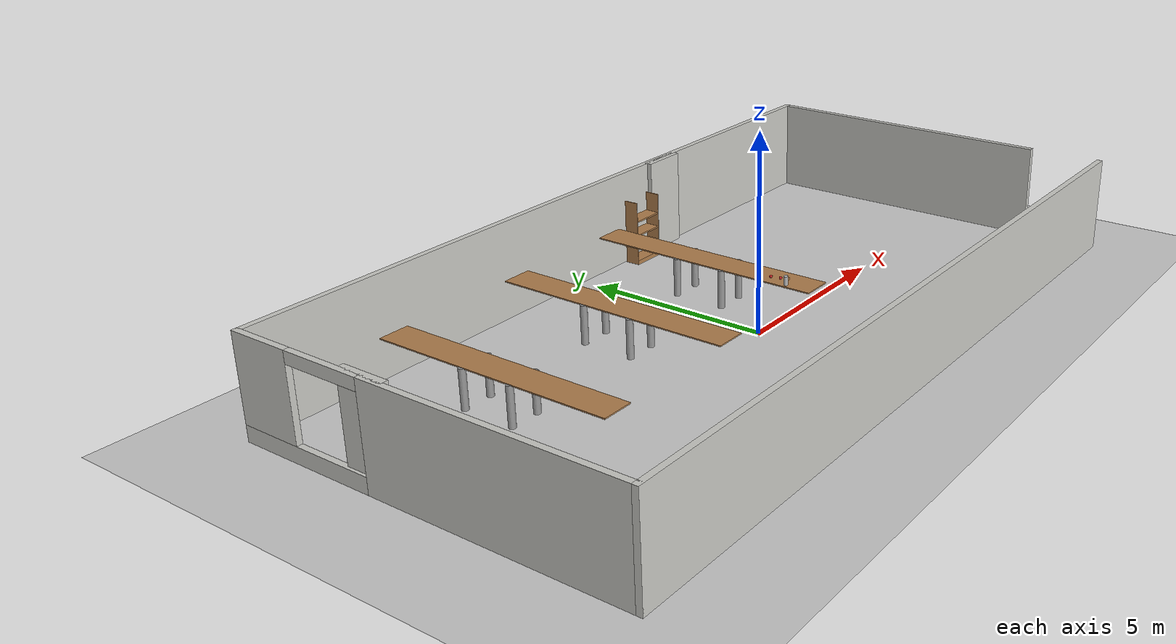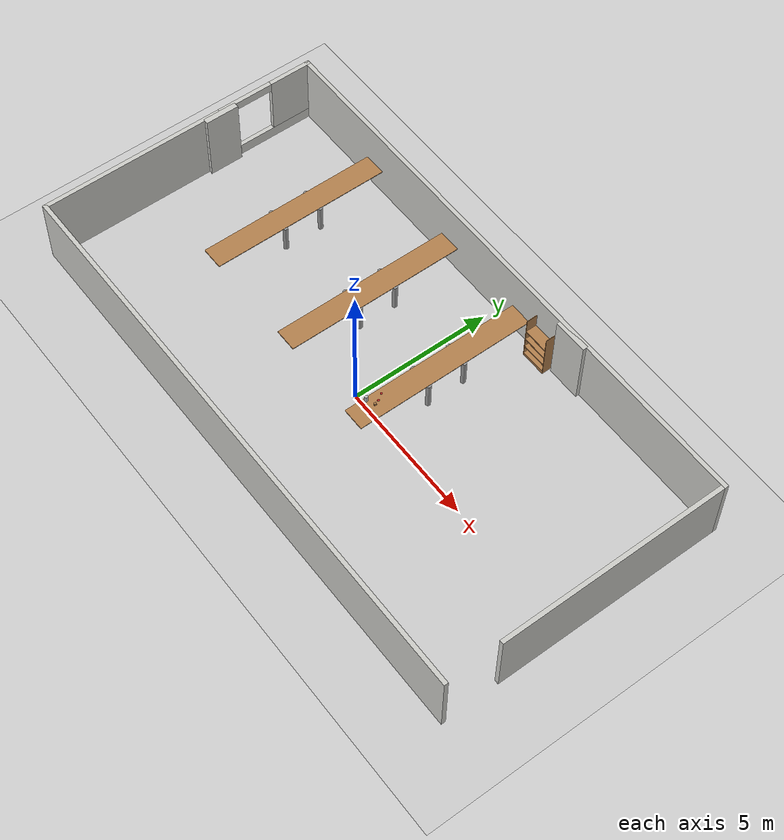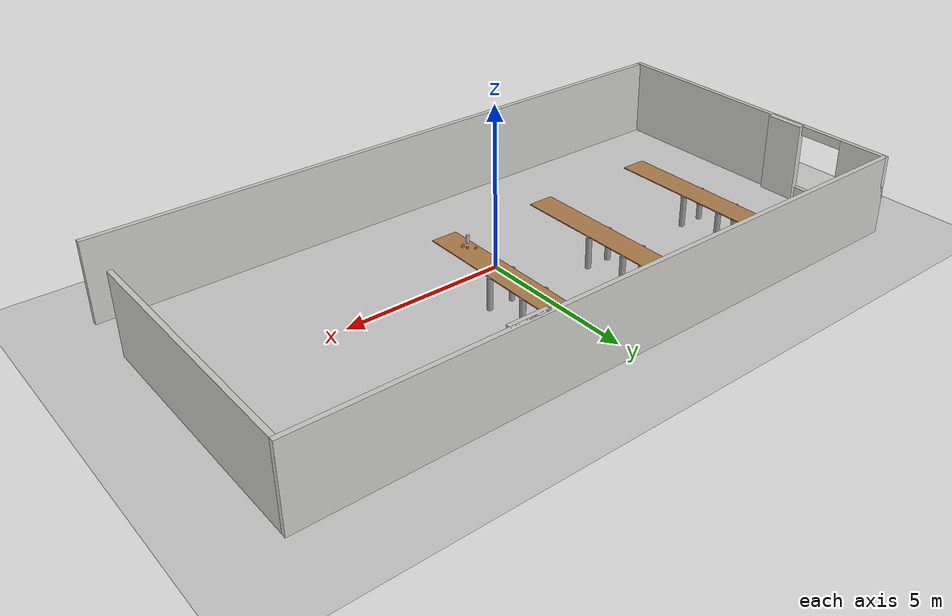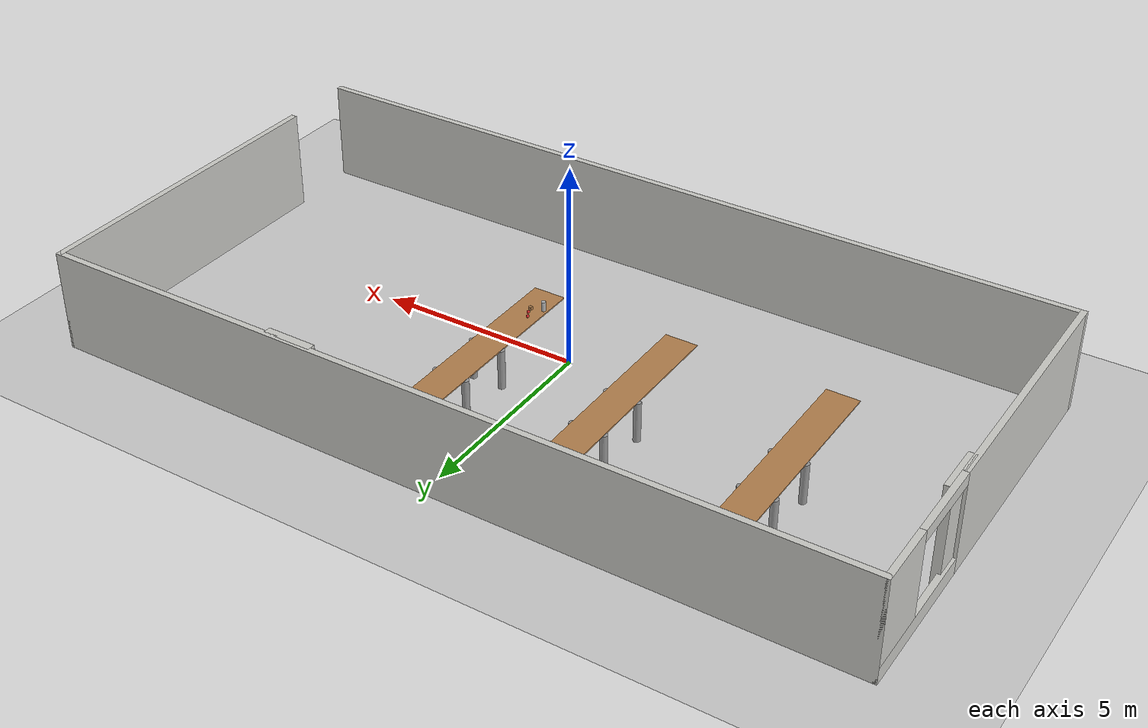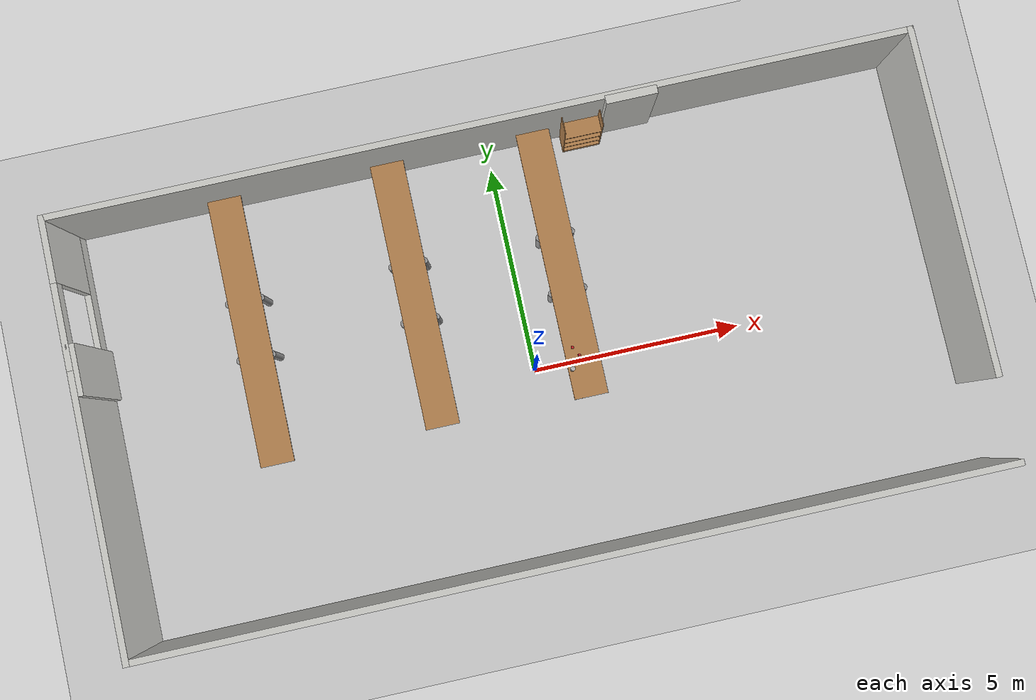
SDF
<sdf version="1.6">
 <world name="default">
  <light name="sun" type="directional">
   <pose>0 0 10 0 -0 0</pose>
   <diffuse>0.8 0.8 0.8 1</diffuse>
   <specular>0.2 0.2 0.2 1</specular>
   <attenuation>
    <range>1000</range>
    <constant>0.9</constant>
    <linear>0.01</linear>
    <quadratic>0.001</quadratic>
   </attenuation>
   <direction>-0.5 0.1 -0.9</direction>
  </light>
  <model name="ground_plane">
   <static>1</static>
   <link name="link">
    <collision name="collision">
     <geometry><plane><normal>0 0 1</normal><size>100 100</size></plane></geometry>
     <surface><friction><ode><mu>100</mu><mu2>50</mu2></ode></friction></surface>
    </collision>
    <visual name="visual">
     <cast_shadows>0</cast_shadows>
     <geometry><plane><normal>0 0 1</normal><size>100 100</size></plane></geometry>
     <material>
      <script><uri>file://media/materials/scripts/gazebo.material</uri><name>Gazebo/Grey</name></script>
     </material>
    </visual>
   </link>
  </model>
  <gravity>0 0 -9.8</gravity>
  <magnetic_field>6e-06 2.3e-05 -4.2e-05</magnetic_field>
  <atmosphere type="adiabatic"/>
  <physics name="default_physics" default="0" type="ode">
   <max_step_size>0.001</max_step_size>
   <real_time_factor>1</real_time_factor>
   <real_time_update_rate>1000</real_time_update_rate>
  </physics>
  <scene><ambient>0.4 0.4 0.4 1</ambient><background>0.7 0.7 0.7 1</background><shadows>1</shadows></scene>
  <spherical_coordinates>
   <surface_model>EARTH_WGS84</surface_model>
   <latitude_deg>0</latitude_deg>
   <longitude_deg>0</longitude_deg>
   <elevation>0</elevation>
   <heading_deg>0</heading_deg>
  </spherical_coordinates>
  <model name="office">
   <pose>-0.091369 0.56198 0 0 -0 0</pose>
   <link name="Wall_0">
    <collision name="Wall_0_Collision">
     <geometry><box><size>20.15 0.15 2.5</size></box></geometry>
     <pose>0 0 1.25 0 -0 0</pose>
    </collision>
    <visual name="Wall_0_Visual">
     <pose>0 0 1.25 0 -0 0</pose>
     <geometry><box><size>20.15 0.15 2.5</size></box></geometry>
     <material>
      <script><uri>file://media/materials/scripts/gazebo.material</uri><name>Gazebo/CeilingTiled</name></script>
      <ambient>1 1 1 1</ambient>
     </material>
     <meta><layer>0</layer></meta>
    </visual>
    <pose>0 5 0 0 -0 0</pose>
   </link>
   <link name="Wall_10">
    <collision name="Wall_10_Collision">
     <geometry><box><size>1.2 0.2 2.5</size></box></geometry>
     <pose>0 0 1.25 0 -0 0</pose>
    </collision>
    <visual name="Wall_10_Visual">
     <pose>0 0 1.25 0 -0 0</pose>
     <geometry><box><size>1.2 0.2 2.5</size></box></geometry>
     <material>
      <script><uri>file://media/materials/scripts/gazebo.material</uri><name>Gazebo/CeilingTiled</name></script>
      <ambient>1 1 1 1</ambient>
     </material>
     <meta><layer>0</layer></meta>
    </visual>
    <pose>-9.9 1.5 0 0 -0 1.5708</pose>
   </link>
   <link name="Wall_2">
    <collision name="Wall_2_Collision">
     <geometry><box><size>20.15 0.15 2.5</size></box></geometry>
     <pose>0 0 1.25 0 -0 0</pose>
    </collision>
    <visual name="Wall_2_Visual">
     <pose>0 0 1.25 0 -0 0</pose>
     <geometry><box><size>20.15 0.15 2.5</size></box></geometry>
     <material>
      <script><uri>file://media/materials/scripts/gazebo.material</uri><name>Gazebo/CeilingTiled</name></script>
      <ambient>1 1 1 1</ambient>
     </material>
     <meta><layer>0</layer></meta>
    </visual>
    <pose>0 -5 0 0 -0 0</pose>
   </link>
   <link name="Wall_4">
    <pose>-10 0 0 0 -0 1.5708</pose>
    <visual name="Wall_4_Visual_0">
     <pose>-1.7875 0 1.25 0 -0 0</pose>
     <geometry><box><size>6.575 0.15 2.5</size></box></geometry>
     <material>
      <script><uri>file://media/materials/scripts/gazebo.material</uri><name>Gazebo/CeilingTiled</name></script>
      <ambient>1 1 1 1</ambient>
     </material>
     <meta><layer>0</layer></meta>
    </visual>
    <collision name="Wall_4_Collision_0">
     <geometry><box><size>6.575 0.15 2.5</size></box></geometry>
     <pose>-1.7875 0 1.25 0 -0 0</pose>
    </collision>
    <visual name="Wall_4_Visual_1">
     <pose>3.2875 0 0.2 0 -0 0</pose>
     <geometry><box><size>3.575 0.15 0.4</size></box></geometry>
     <material>
      <script><uri>file://media/materials/scripts/gazebo.material</uri><name>Gazebo/CeilingTiled</name></script>
      <ambient>1 1 1 1</ambient>
     </material>
     <meta><layer>0</layer></meta>
    </visual>
    <collision name="Wall_4_Collision_1">
     <geometry><box><size>3.575 0.15 0.4</size></box></geometry>
     <pose>3.2875 0 0.2 0 -0 0</pose>
    </collision>
    <visual name="Wall_4_Visual_2">
     <pose>4.2875 0 1.45 0 -0 0</pose>
     <geometry><box><size>1.575 0.15 2.1</size></box></geometry>
     <material>
      <script><uri>file://media/materials/scripts/gazebo.material</uri><name>Gazebo/CeilingTiled</name></script>
      <ambient>1 1 1 1</ambient>
     </material>
     <meta><layer>0</layer></meta>
    </visual>
    <collision name="Wall_4_Collision_2">
     <geometry><box><size>1.575 0.15 2.1</size></box></geometry>
     <pose>4.2875 0 1.45 0 -0 0</pose>
    </collision>
    <visual name="Wall_4_Visual_3">
     <pose>2.5 0 2.35 0 -0 0</pose>
     <geometry><box><size>2 0.15 0.3</size></box></geometry>
     <material>
      <script><uri>file://media/materials/scripts/gazebo.material</uri><name>Gazebo/CeilingTiled</name></script>
      <ambient>1 1 1 1</ambient>
     </material>
     <meta><layer>0</layer></meta>
    </visual>
    <collision name="Wall_4_Collision_3">
     <geometry><box><size>2 0.15 0.3</size></box></geometry>
     <pose>2.5 0 2.35 0 -0 0</pose>
    </collision>
   </link>
   <link name="Wall_6">
    <collision name="Wall_6_Collision">
     <geometry><box><size>8.15 0.15 2.5</size></box></geometry>
     <pose>0 0 1.25 0 -0 0</pose>
    </collision>
    <visual name="Wall_6_Visual">
     <pose>0 0 1.25 0 -0 0</pose>
     <geometry><box><size>8.15 0.15 2.5</size></box></geometry>
     <material>
      <script><uri>file://media/materials/scripts/gazebo.material</uri><name>Gazebo/CeilingTiled</name></script>
      <ambient>1 1 1 1</ambient>
     </material>
     <meta><layer>0</layer></meta>
    </visual>
    <pose>10 1 0 0 -0 1.5708</pose>
   </link>
   <link name="Wall_8">
    <collision name="Wall_8_Collision">
     <geometry><box><size>1.2 0.2 2.5</size></box></geometry>
     <pose>0 0 1.25 0 -0 0</pose>
    </collision>
    <visual name="Wall_8_Visual">
     <pose>0 0 1.25 0 -0 0</pose>
     <geometry><box><size>1.2 0.2 2.5</size></box></geometry>
     <material>
      <script><uri>file://media/materials/scripts/gazebo.material</uri><name>Gazebo/CeilingTiled</name></script>
      <ambient>1 1 1 1</ambient>
     </material>
     <meta><layer>0</layer></meta>
    </visual>
    <pose>3.5 4.9 0 0 -0 0</pose>
   </link>
   <static>1</static>
  </model>
  <model name="table">
   <link name="link">
    <pose>6.07476 0.523898 0 0 -0 1.57</pose>
    <inertial>
     <mass>6.06198</mass>
     <inertia>
      <ixx>0.520272</ixx>
      <ixy>0</ixy>
      <ixz>0</ixz>
      <iyy>0.520272</iyy>
      <iyz>0</iyz>
      <izz>0.0302146</izz>
     </inertia>
    </inertial>
    <visual name="visual1">
     <pose>0 0 1 0 -0 0</pose>
     <geometry><box><size>6.44799 0.8 0.03</size></box></geometry>
     <material>
      <script><uri>file://media/materials/scripts/gazebo.material</uri><name>Gazebo/Wood</name></script>
      <shader type="pixel"><normal_map>__default__</normal_map></shader>
      <ambient>1 1 1 1</ambient>
      <diffuse>1 1 1 1</diffuse>
      <specular>0.2 0.2 0.2 1</specular>
      <emissive>0 0 0 1</emissive>
     </material>
    </visual>
    <visual name="front_left_leg">
     <pose>0.68 0.38 0.5 0 -0 0</pose>
     <geometry><cylinder><radius>0.0864663</radius><length>1</length></cylinder></geometry>
     <material>
      <script><uri>file://media/materials/scripts/gazebo.material</uri><name>Gazebo/Grey</name></script>
      <shader type="pixel"><normal_map>__default__</normal_map></shader>
      <ambient>0.3 0.3 0.3 1</ambient>
      <diffuse>0.7 0.7 0.7 1</diffuse>
      <specular>0.01 0.01 0.01 1</specular>
      <emissive>0 0 0 1</emissive>
     </material>
    </visual>
    <visual name="front_right_leg">
     <pose>0.68 -0.38 0.5 0 -0 0</pose>
     <geometry><cylinder><radius>0.0864663</radius><length>1</length></cylinder></geometry>
     <material>
      <script><uri>file://media/materials/scripts/gazebo.material</uri><name>Gazebo/Grey</name></script>
      <shader type="pixel"><normal_map>__default__</normal_map></shader>
      <ambient>0.3 0.3 0.3 1</ambient>
      <diffuse>0.7 0.7 0.7 1</diffuse>
      <specular>0.01 0.01 0.01 1</specular>
      <emissive>0 0 0 1</emissive>
     </material>
    </visual>
    <visual name="back_right_leg">
     <pose>-0.68 -0.38 0.5 0 -0 0</pose>
     <geometry><cylinder><radius>0.0864663</radius><length>1</length></cylinder></geometry>
     <material>
      <script><uri>file://media/materials/scripts/gazebo.material</uri><name>Gazebo/Grey</name></script>
      <shader type="pixel"><normal_map>__default__</normal_map></shader>
      <ambient>0.3 0.3 0.3 1</ambient>
      <diffuse>0.7 0.7 0.7 1</diffuse>
      <specular>0.01 0.01 0.01 1</specular>
      <emissive>0 0 0 1</emissive>
     </material>
    </visual>
    <visual name="back_left_leg">
     <pose>-0.68 0.38 0.5 0 -0 0</pose>
     <geometry><cylinder><radius>0.0864663</radius><length>1</length></cylinder></geometry>
     <material>
      <script><uri>file://media/materials/scripts/gazebo.material</uri><name>Gazebo/Grey</name></script>
      <shader type="pixel"><normal_map>__default__</normal_map></shader>
      <ambient>0.3 0.3 0.3 1</ambient>
      <diffuse>0.7 0.7 0.7 1</diffuse>
      <specular>0.01 0.01 0.01 1</specular>
      <emissive>0 0 0 1</emissive>
     </material>
    </visual>
    <collision name="surface">
     <pose>0 0 1 0 -0 0</pose>
     <geometry><box><size>6.44799 0.8 0.03</size></box></geometry>
     <surface>
      <friction>
       <ode><mu>0.6</mu><mu2>0.6</mu2><fdir1>0 0 0</fdir1><slip1>0</slip1><slip2>0</slip2></ode>
       <torsional>
        <coefficient>1</coefficient>
        <patch_radius>0</patch_radius>
        <surface_radius>0</surface_radius>
        <use_patch_radius>1</use_patch_radius>
        <ode><slip>0</slip></ode>
       </torsional>
      </friction>
      <bounce><restitution_coefficient>0</restitution_coefficient><threshold>1e+06</threshold></bounce>
      <contact>
       <collide_without_contact>0</collide_without_contact>
       <collide_without_contact_bitmask>1</collide_without_contact_bitmask>
       <collide_bitmask>1</collide_bitmask>
       <ode>
        <soft_cfm>0</soft_cfm>
        <soft_erp>0.2</soft_erp>
        <kp>1e+13</kp>
        <kd>1</kd>
        <max_vel>0.01</max_vel>
        <min_depth>0</min_depth>
       </ode>
       <bullet>
        <split_impulse>1</split_impulse>
        <split_impulse_penetration_threshold>-0.01</split_impulse_penetration_threshold>
        <soft_cfm>0</soft_cfm>
        <soft_erp>0.2</soft_erp>
        <kp>1e+13</kp>
        <kd>1</kd>
       </bullet>
      </contact>
     </surface>
    </collision>
    <collision name="front_left_leg">
     <pose>0.68 0.38 0.5 0 -0 0</pose>
     <geometry><cylinder><radius>0.086466</radius><length>1</length></cylinder></geometry>
     <surface>
      <friction>
       <ode><mu>1</mu><mu2>1</mu2><fdir1>0 0 0</fdir1><slip1>0</slip1><slip2>0</slip2></ode>
       <torsional>
        <coefficient>1</coefficient>
        <patch_radius>0</patch_radius>
        <surface_radius>0</surface_radius>
        <use_patch_radius>1</use_patch_radius>
        <ode><slip>0</slip></ode>
       </torsional>
      </friction>
      <bounce><restitution_coefficient>0</restitution_coefficient><threshold>1e+06</threshold></bounce>
      <contact>
       <collide_without_contact>0</collide_without_contact>
       <collide_without_contact_bitmask>1</collide_without_contact_bitmask>
       <collide_bitmask>1</collide_bitmask>
       <ode>
        <soft_cfm>0</soft_cfm>
        <soft_erp>0.2</soft_erp>
        <kp>1e+13</kp>
        <kd>1</kd>
        <max_vel>0.01</max_vel>
        <min_depth>0</min_depth>
       </ode>
       <bullet>
        <split_impulse>1</split_impulse>
        <split_impulse_penetration_threshold>-0.01</split_impulse_penetration_threshold>
        <soft_cfm>0</soft_cfm>
        <soft_erp>0.2</soft_erp>
        <kp>1e+13</kp>
        <kd>1</kd>
       </bullet>
      </contact>
     </surface>
    </collision>
    <collision name="back_right_leg">
     <pose>-0.68 -0.38 0.5 0 -0 0</pose>
     <geometry><cylinder><radius>0.086466</radius><length>1</length></cylinder></geometry>
     <surface>
      <friction>
       <ode><mu>1</mu><mu2>1</mu2><fdir1>0 0 0</fdir1><slip1>0</slip1><slip2>0</slip2></ode>
       <torsional>
        <coefficient>1</coefficient>
        <patch_radius>0</patch_radius>
        <surface_radius>0</surface_radius>
        <use_patch_radius>1</use_patch_radius>
        <ode><slip>0</slip></ode>
       </torsional>
      </friction>
      <bounce><restitution_coefficient>0</restitution_coefficient><threshold>1e+06</threshold></bounce>
      <contact>
       <collide_without_contact>0</collide_without_contact>
       <collide_without_contact_bitmask>1</collide_without_contact_bitmask>
       <collide_bitmask>1</collide_bitmask>
       <ode>
        <soft_cfm>0</soft_cfm>
        <soft_erp>0.2</soft_erp>
        <kp>1e+13</kp>
        <kd>1</kd>
        <max_vel>0.01</max_vel>
        <min_depth>0</min_depth>
       </ode>
       <bullet>
        <split_impulse>1</split_impulse>
        <split_impulse_penetration_threshold>-0.01</split_impulse_penetration_threshold>
        <soft_cfm>0</soft_cfm>
        <soft_erp>0.2</soft_erp>
        <kp>1e+13</kp>
        <kd>1</kd>
       </bullet>
      </contact>
     </surface>
    </collision>
    <collision name="front_right_leg">
     <pose>0.68 -0.38 0.5 0 -0 0</pose>
     <geometry><cylinder><radius>0.086466</radius><length>1</length></cylinder></geometry>
     <surface>
      <friction>
       <ode><mu>1</mu><mu2>1</mu2><fdir1>0 0 0</fdir1><slip1>0</slip1><slip2>0</slip2></ode>
       <torsional>
        <coefficient>1</coefficient>
        <patch_radius>0</patch_radius>
        <surface_radius>0</surface_radius>
        <use_patch_radius>1</use_patch_radius>
        <ode><slip>0</slip></ode>
       </torsional>
      </friction>
      <bounce><restitution_coefficient>0</restitution_coefficient><threshold>1e+06</threshold></bounce>
      <contact>
       <collide_without_contact>0</collide_without_contact>
       <collide_without_contact_bitmask>1</collide_without_contact_bitmask>
       <collide_bitmask>1</collide_bitmask>
       <ode>
        <soft_cfm>0</soft_cfm>
        <soft_erp>0.2</soft_erp>
        <kp>1e+13</kp>
        <kd>1</kd>
        <max_vel>0.01</max_vel>
        <min_depth>0</min_depth>
       </ode>
       <bullet>
        <split_impulse>1</split_impulse>
        <split_impulse_penetration_threshold>-0.01</split_impulse_penetration_threshold>
        <soft_cfm>0</soft_cfm>
        <soft_erp>0.2</soft_erp>
        <kp>1e+13</kp>
        <kd>1</kd>
       </bullet>
      </contact>
     </surface>
    </collision>
    <collision name="back_left_leg">
     <pose>-0.68 0.38 0.5 0 -0 0</pose>
     <geometry><cylinder><radius>0.086466</radius><length>1</length></cylinder></geometry>
     <surface>
      <friction>
       <ode><mu>1</mu><mu2>1</mu2><fdir1>0 0 0</fdir1><slip1>0</slip1><slip2>0</slip2></ode>
       <torsional>
        <coefficient>1</coefficient>
        <patch_radius>0</patch_radius>
        <surface_radius>0</surface_radius>
        <use_patch_radius>1</use_patch_radius>
        <ode><slip>0</slip></ode>
       </torsional>
      </friction>
      <bounce><restitution_coefficient>0</restitution_coefficient><threshold>1e+06</threshold></bounce>
      <contact>
       <collide_without_contact>0</collide_without_contact>
       <collide_without_contact_bitmask>1</collide_without_contact_bitmask>
       <collide_bitmask>1</collide_bitmask>
       <ode>
        <soft_cfm>0</soft_cfm>
        <soft_erp>0.2</soft_erp>
        <kp>1e+13</kp>
        <kd>1</kd>
        <max_vel>0.01</max_vel>
        <min_depth>0</min_depth>
       </ode>
       <bullet>
        <split_impulse>1</split_impulse>
        <split_impulse_penetration_threshold>-0.01</split_impulse_penetration_threshold>
        <soft_cfm>0</soft_cfm>
        <soft_erp>0.2</soft_erp>
        <kp>1e+13</kp>
        <kd>1</kd>
       </bullet>
      </contact>
     </surface>
    </collision>
   </link>
   <link name="link_clone">
    <pose>2.54774 0.582371 0 0 -0 1.57</pose>
    <inertial>
     <mass>6.06198</mass>
     <inertia>
      <ixx>0.520272</ixx>
      <ixy>0</ixy>
      <ixz>0</ixz>
      <iyy>0.520272</iyy>
      <iyz>0</iyz>
      <izz>0.0302146</izz>
     </inertia>
    </inertial>
    <visual name="front_left_leg">
     <pose>0.68 0.38 0.5 0 -0 0</pose>
     <geometry><cylinder><radius>0.0864663</radius><length>1</length></cylinder></geometry>
     <material>
      <script><uri>file://media/materials/scripts/gazebo.material</uri><name>Gazebo/Grey</name></script>
      <shader type="pixel"><normal_map>__default__</normal_map></shader>
      <ambient>0.3 0.3 0.3 1</ambient>
      <diffuse>0.7 0.7 0.7 1</diffuse>
      <specular>0.01 0.01 0.01 1</specular>
      <emissive>0 0 0 1</emissive>
     </material>
    </visual>
    <visual name="front_right_leg">
     <pose>0.68 -0.38 0.5 0 -0 0</pose>
     <geometry><cylinder><radius>0.0864663</radius><length>1</length></cylinder></geometry>
     <material>
      <script><uri>file://media/materials/scripts/gazebo.material</uri><name>Gazebo/Grey</name></script>
      <shader type="pixel"><normal_map>__default__</normal_map></shader>
      <ambient>0.3 0.3 0.3 1</ambient>
      <diffuse>0.7 0.7 0.7 1</diffuse>
      <specular>0.01 0.01 0.01 1</specular>
      <emissive>0 0 0 1</emissive>
     </material>
    </visual>
    <visual name="back_right_leg">
     <pose>-0.68 -0.38 0.5 0 -0 0</pose>
     <geometry><cylinder><radius>0.0864663</radius><length>1</length></cylinder></geometry>
     <material>
      <script><uri>file://media/materials/scripts/gazebo.material</uri><name>Gazebo/Grey</name></script>
      <shader type="pixel"><normal_map>__default__</normal_map></shader>
      <ambient>0.3 0.3 0.3 1</ambient>
      <diffuse>0.7 0.7 0.7 1</diffuse>
      <specular>0.01 0.01 0.01 1</specular>
      <emissive>0 0 0 1</emissive>
     </material>
    </visual>
    <visual name="back_left_leg">
     <pose>-0.68 0.38 0.5 0 -0 0</pose>
     <geometry><cylinder><radius>0.0864663</radius><length>1</length></cylinder></geometry>
     <material>
      <script><uri>file://media/materials/scripts/gazebo.material</uri><name>Gazebo/Grey</name></script>
      <shader type="pixel"><normal_map>__default__</normal_map></shader>
      <ambient>0.3 0.3 0.3 1</ambient>
      <diffuse>0.7 0.7 0.7 1</diffuse>
      <specular>0.01 0.01 0.01 1</specular>
      <emissive>0 0 0 1</emissive>
     </material>
    </visual>
    <visual name="visual1">
     <pose>0 0 1 0 -0 0</pose>
     <geometry><box><size>6.44799 0.8 0.03</size></box></geometry>
     <material>
      <script><uri>file://media/materials/scripts/gazebo.material</uri><name>Gazebo/Wood</name></script>
      <shader type="pixel"><normal_map>__default__</normal_map></shader>
      <ambient>1 1 1 1</ambient>
      <diffuse>1 1 1 1</diffuse>
      <specular>0.2 0.2 0.2 1</specular>
      <emissive>0 0 0 1</emissive>
     </material>
    </visual>
    <collision name="back_right_leg_0">
     <pose>-0.68 -0.38 0.5 0 -0 0</pose>
     <geometry><cylinder><radius>0.086466</radius><length>1</length></cylinder></geometry>
     <surface>
      <friction>
       <ode><mu>1</mu><mu2>1</mu2><fdir1>0 0 0</fdir1><slip1>0</slip1><slip2>0</slip2></ode>
       <torsional>
        <coefficient>1</coefficient>
        <patch_radius>0</patch_radius>
        <surface_radius>0</surface_radius>
        <use_patch_radius>1</use_patch_radius>
        <ode><slip>0</slip></ode>
       </torsional>
      </friction>
      <bounce><restitution_coefficient>0</restitution_coefficient><threshold>1e+06</threshold></bounce>
      <contact>
       <collide_without_contact>0</collide_without_contact>
       <collide_without_contact_bitmask>1</collide_without_contact_bitmask>
       <collide_bitmask>1</collide_bitmask>
       <ode>
        <soft_cfm>0</soft_cfm>
        <soft_erp>0.2</soft_erp>
        <kp>1e+13</kp>
        <kd>1</kd>
        <max_vel>0.01</max_vel>
        <min_depth>0</min_depth>
       </ode>
       <bullet>
        <split_impulse>1</split_impulse>
        <split_impulse_penetration_threshold>-0.01</split_impulse_penetration_threshold>
        <soft_cfm>0</soft_cfm>
        <soft_erp>0.2</soft_erp>
        <kp>1e+13</kp>
        <kd>1</kd>
       </bullet>
      </contact>
     </surface>
    </collision>
    <collision name="surface">
     <pose>0 0 1 0 -0 0</pose>
     <geometry><box><size>6.44799 0.8 0.03</size></box></geometry>
     <surface>
      <friction>
       <ode><mu>1</mu><mu2>1</mu2><fdir1>0 0 0</fdir1><slip1>0</slip1><slip2>0</slip2></ode>
       <torsional>
        <coefficient>1</coefficient>
        <patch_radius>0</patch_radius>
        <surface_radius>0</surface_radius>
        <use_patch_radius>1</use_patch_radius>
        <ode><slip>0</slip></ode>
       </torsional>
      </friction>
      <bounce><restitution_coefficient>0</restitution_coefficient><threshold>1e+06</threshold></bounce>
      <contact>
       <collide_without_contact>0</collide_without_contact>
       <collide_without_contact_bitmask>1</collide_without_contact_bitmask>
       <collide_bitmask>1</collide_bitmask>
       <ode>
        <soft_cfm>0</soft_cfm>
        <soft_erp>0.2</soft_erp>
        <kp>1e+13</kp>
        <kd>1</kd>
        <max_vel>0.01</max_vel>
        <min_depth>0</min_depth>
       </ode>
       <bullet>
        <split_impulse>1</split_impulse>
        <split_impulse_penetration_threshold>-0.01</split_impulse_penetration_threshold>
        <soft_cfm>0</soft_cfm>
        <soft_erp>0.2</soft_erp>
        <kp>1e+13</kp>
        <kd>1</kd>
       </bullet>
      </contact>
     </surface>
    </collision>
    <collision name="back_left_leg_0">
     <pose>-0.68 0.38 0.5 0 -0 0</pose>
     <geometry><cylinder><radius>0.086466</radius><length>1</length></cylinder></geometry>
     <surface>
      <friction>
       <ode><mu>1</mu><mu2>1</mu2><fdir1>0 0 0</fdir1><slip1>0</slip1><slip2>0</slip2></ode>
       <torsional>
        <coefficient>1</coefficient>
        <patch_radius>0</patch_radius>
        <surface_radius>0</surface_radius>
        <use_patch_radius>1</use_patch_radius>
        <ode><slip>0</slip></ode>
       </torsional>
      </friction>
      <bounce><restitution_coefficient>0</restitution_coefficient><threshold>1e+06</threshold></bounce>
      <contact>
       <collide_without_contact>0</collide_without_contact>
       <collide_without_contact_bitmask>1</collide_without_contact_bitmask>
       <collide_bitmask>1</collide_bitmask>
       <ode>
        <soft_cfm>0</soft_cfm>
        <soft_erp>0.2</soft_erp>
        <kp>1e+13</kp>
        <kd>1</kd>
        <max_vel>0.01</max_vel>
        <min_depth>0</min_depth>
       </ode>
       <bullet>
        <split_impulse>1</split_impulse>
        <split_impulse_penetration_threshold>-0.01</split_impulse_penetration_threshold>
        <soft_cfm>0</soft_cfm>
        <soft_erp>0.2</soft_erp>
        <kp>1e+13</kp>
        <kd>1</kd>
       </bullet>
      </contact>
     </surface>
    </collision>
    <collision name="front_right_leg_0">
     <pose>0.68 -0.38 0.5 0 -0 0</pose>
     <geometry><cylinder><radius>0.086466</radius><length>1</length></cylinder></geometry>
     <surface>
      <friction>
       <ode><mu>1</mu><mu2>1</mu2><fdir1>0 0 0</fdir1><slip1>0</slip1><slip2>0</slip2></ode>
       <torsional>
        <coefficient>1</coefficient>
        <patch_radius>0</patch_radius>
        <surface_radius>0</surface_radius>
        <use_patch_radius>1</use_patch_radius>
        <ode><slip>0</slip></ode>
       </torsional>
      </friction>
      <bounce><restitution_coefficient>0</restitution_coefficient><threshold>1e+06</threshold></bounce>
      <contact>
       <collide_without_contact>0</collide_without_contact>
       <collide_without_contact_bitmask>1</collide_without_contact_bitmask>
       <collide_bitmask>1</collide_bitmask>
       <ode>
        <soft_cfm>0</soft_cfm>
        <soft_erp>0.2</soft_erp>
        <kp>1e+13</kp>
        <kd>1</kd>
        <max_vel>0.01</max_vel>
        <min_depth>0</min_depth>
       </ode>
       <bullet>
        <split_impulse>1</split_impulse>
        <split_impulse_penetration_threshold>-0.01</split_impulse_penetration_threshold>
        <soft_cfm>0</soft_cfm>
        <soft_erp>0.2</soft_erp>
        <kp>1e+13</kp>
        <kd>1</kd>
       </bullet>
      </contact>
     </surface>
    </collision>
    <collision name="front_left_leg_0">
     <pose>0.68 0.38 0.5 0 -0 0</pose>
     <geometry><cylinder><radius>0.086466</radius><length>1</length></cylinder></geometry>
     <surface>
      <friction>
       <ode><mu>1</mu><mu2>1</mu2><fdir1>0 0 0</fdir1><slip1>0</slip1><slip2>0</slip2></ode>
       <torsional>
        <coefficient>1</coefficient>
        <patch_radius>0</patch_radius>
        <surface_radius>0</surface_radius>
        <use_patch_radius>1</use_patch_radius>
        <ode><slip>0</slip></ode>
       </torsional>
      </friction>
      <bounce><restitution_coefficient>0</restitution_coefficient><threshold>1e+06</threshold></bounce>
      <contact>
       <collide_without_contact>0</collide_without_contact>
       <collide_without_contact_bitmask>1</collide_without_contact_bitmask>
       <collide_bitmask>1</collide_bitmask>
       <ode>
        <soft_cfm>0</soft_cfm>
        <soft_erp>0.2</soft_erp>
        <kp>1e+13</kp>
        <kd>1</kd>
        <max_vel>0.01</max_vel>
        <min_depth>0</min_depth>
       </ode>
       <bullet>
        <split_impulse>1</split_impulse>
        <split_impulse_penetration_threshold>-0.01</split_impulse_penetration_threshold>
        <soft_cfm>0</soft_cfm>
        <soft_erp>0.2</soft_erp>
        <kp>1e+13</kp>
        <kd>1</kd>
       </bullet>
      </contact>
     </surface>
    </collision>
   </link>
   <link name="link_clone_0">
    <pose>-1.37256 0.557287 0 0 -0 1.57</pose>
    <inertial>
     <mass>6.06198</mass>
     <inertia>
      <ixx>0.520272</ixx>
      <ixy>0</ixy>
      <ixz>0</ixz>
      <iyy>0.520272</iyy>
      <iyz>0</iyz>
      <izz>0.0302146</izz>
     </inertia>
    </inertial>
    <visual name="front_right_leg">
     <pose>0.68 -0.38 0.5 0 -0 0</pose>
     <geometry><cylinder><radius>0.0864663</radius><length>1</length></cylinder></geometry>
     <material>
      <script><uri>file://media/materials/scripts/gazebo.material</uri><name>Gazebo/Grey</name></script>
      <shader type="pixel"><normal_map>__default__</normal_map></shader>
      <ambient>0.3 0.3 0.3 1</ambient>
      <diffuse>0.7 0.7 0.7 1</diffuse>
      <specular>0.01 0.01 0.01 1</specular>
      <emissive>0 0 0 1</emissive>
     </material>
    </visual>
    <visual name="back_right_leg">
     <pose>-0.68 -0.38 0.5 0 -0 0</pose>
     <geometry><cylinder><radius>0.0864663</radius><length>1</length></cylinder></geometry>
     <material>
      <script><uri>file://media/materials/scripts/gazebo.material</uri><name>Gazebo/Grey</name></script>
      <shader type="pixel"><normal_map>__default__</normal_map></shader>
      <ambient>0.3 0.3 0.3 1</ambient>
      <diffuse>0.7 0.7 0.7 1</diffuse>
      <specular>0.01 0.01 0.01 1</specular>
      <emissive>0 0 0 1</emissive>
     </material>
    </visual>
    <visual name="back_left_leg">
     <pose>-0.68 0.38 0.5 0 -0 0</pose>
     <geometry><cylinder><radius>0.0864663</radius><length>1</length></cylinder></geometry>
     <material>
      <script><uri>file://media/materials/scripts/gazebo.material</uri><name>Gazebo/Grey</name></script>
      <shader type="pixel"><normal_map>__default__</normal_map></shader>
      <ambient>0.3 0.3 0.3 1</ambient>
      <diffuse>0.7 0.7 0.7 1</diffuse>
      <specular>0.01 0.01 0.01 1</specular>
      <emissive>0 0 0 1</emissive>
     </material>
    </visual>
    <visual name="front_left_leg">
     <pose>0.68 0.38 0.5 0 -0 0</pose>
     <geometry><cylinder><radius>0.0864663</radius><length>1</length></cylinder></geometry>
     <material>
      <script><uri>file://media/materials/scripts/gazebo.material</uri><name>Gazebo/Grey</name></script>
      <shader type="pixel"><normal_map>__default__</normal_map></shader>
      <ambient>0.3 0.3 0.3 1</ambient>
      <diffuse>0.7 0.7 0.7 1</diffuse>
      <specular>0.01 0.01 0.01 1</specular>
      <emissive>0 0 0 1</emissive>
     </material>
    </visual>
    <visual name="visual1">
     <pose>0 0 1 0 -0 0</pose>
     <geometry><box><size>6.44799 0.8 0.03</size></box></geometry>
     <material>
      <script><uri>file://media/materials/scripts/gazebo.material</uri><name>Gazebo/Wood</name></script>
      <shader type="pixel"><normal_map>__default__</normal_map></shader>
      <ambient>1 1 1 1</ambient>
      <diffuse>1 1 1 1</diffuse>
      <specular>0.2 0.2 0.2 1</specular>
      <emissive>0 0 0 1</emissive>
     </material>
    </visual>
    <collision name="back_left_leg_0">
     <pose>-0.68 0.38 0.5 0 -0 0</pose>
     <geometry><cylinder><radius>0.086466</radius><length>1</length></cylinder></geometry>
     <surface>
      <friction>
       <ode><mu>1</mu><mu2>1</mu2><fdir1>0 0 0</fdir1><slip1>0</slip1><slip2>0</slip2></ode>
       <torsional>
        <coefficient>1</coefficient>
        <patch_radius>0</patch_radius>
        <surface_radius>0</surface_radius>
        <use_patch_radius>1</use_patch_radius>
        <ode><slip>0</slip></ode>
       </torsional>
      </friction>
      <bounce><restitution_coefficient>0</restitution_coefficient><threshold>1e+06</threshold></bounce>
      <contact>
       <collide_without_contact>0</collide_without_contact>
       <collide_without_contact_bitmask>1</collide_without_contact_bitmask>
       <collide_bitmask>1</collide_bitmask>
       <ode>
        <soft_cfm>0</soft_cfm>
        <soft_erp>0.2</soft_erp>
        <kp>1e+13</kp>
        <kd>1</kd>
        <max_vel>0.01</max_vel>
        <min_depth>0</min_depth>
       </ode>
       <bullet>
        <split_impulse>1</split_impulse>
        <split_impulse_penetration_threshold>-0.01</split_impulse_penetration_threshold>
        <soft_cfm>0</soft_cfm>
        <soft_erp>0.2</soft_erp>
        <kp>1e+13</kp>
        <kd>1</kd>
       </bullet>
      </contact>
     </surface>
    </collision>
    <collision name="surface">
     <pose>0 0 1 0 -0 0</pose>
     <geometry><box><size>6.44799 0.8 0.03</size></box></geometry>
     <surface>
      <friction>
       <ode><mu>1</mu><mu2>1</mu2><fdir1>0 0 0</fdir1><slip1>0</slip1><slip2>0</slip2></ode>
       <torsional>
        <coefficient>1</coefficient>
        <patch_radius>0</patch_radius>
        <surface_radius>0</surface_radius>
        <use_patch_radius>1</use_patch_radius>
        <ode><slip>0</slip></ode>
       </torsional>
      </friction>
      <bounce><restitution_coefficient>0</restitution_coefficient><threshold>1e+06</threshold></bounce>
      <contact>
       <collide_without_contact>0</collide_without_contact>
       <collide_without_contact_bitmask>1</collide_without_contact_bitmask>
       <collide_bitmask>1</collide_bitmask>
       <ode>
        <soft_cfm>0</soft_cfm>
        <soft_erp>0.2</soft_erp>
        <kp>1e+13</kp>
        <kd>1</kd>
        <max_vel>0.01</max_vel>
        <min_depth>0</min_depth>
       </ode>
       <bullet>
        <split_impulse>1</split_impulse>
        <split_impulse_penetration_threshold>-0.01</split_impulse_penetration_threshold>
        <soft_cfm>0</soft_cfm>
        <soft_erp>0.2</soft_erp>
        <kp>1e+13</kp>
        <kd>1</kd>
       </bullet>
      </contact>
     </surface>
    </collision>
    <collision name="front_right_leg_0">
     <pose>0.68 -0.38 0.5 0 -0 0</pose>
     <geometry><cylinder><radius>0.086466</radius><length>1</length></cylinder></geometry>
     <surface>
      <friction>
       <ode><mu>1</mu><mu2>1</mu2><fdir1>0 0 0</fdir1><slip1>0</slip1><slip2>0</slip2></ode>
       <torsional>
        <coefficient>1</coefficient>
        <patch_radius>0</patch_radius>
        <surface_radius>0</surface_radius>
        <use_patch_radius>1</use_patch_radius>
        <ode><slip>0</slip></ode>
       </torsional>
      </friction>
      <bounce><restitution_coefficient>0</restitution_coefficient><threshold>1e+06</threshold></bounce>
      <contact>
       <collide_without_contact>0</collide_without_contact>
       <collide_without_contact_bitmask>1</collide_without_contact_bitmask>
       <collide_bitmask>1</collide_bitmask>
       <ode>
        <soft_cfm>0</soft_cfm>
        <soft_erp>0.2</soft_erp>
        <kp>1e+13</kp>
        <kd>1</kd>
        <max_vel>0.01</max_vel>
        <min_depth>0</min_depth>
       </ode>
       <bullet>
        <split_impulse>1</split_impulse>
        <split_impulse_penetration_threshold>-0.01</split_impulse_penetration_threshold>
        <soft_cfm>0</soft_cfm>
        <soft_erp>0.2</soft_erp>
        <kp>1e+13</kp>
        <kd>1</kd>
       </bullet>
      </contact>
     </surface>
    </collision>
    <collision name="front_left_leg_0">
     <pose>0.68 0.38 0.5 0 -0 0</pose>
     <geometry><cylinder><radius>0.086466</radius><length>1</length></cylinder></geometry>
     <surface>
      <friction>
       <ode><mu>1</mu><mu2>1</mu2><fdir1>0 0 0</fdir1><slip1>0</slip1><slip2>0</slip2></ode>
       <torsional>
        <coefficient>1</coefficient>
        <patch_radius>0</patch_radius>
        <surface_radius>0</surface_radius>
        <use_patch_radius>1</use_patch_radius>
        <ode><slip>0</slip></ode>
       </torsional>
      </friction>
      <bounce><restitution_coefficient>0</restitution_coefficient><threshold>1e+06</threshold></bounce>
      <contact>
       <collide_without_contact>0</collide_without_contact>
       <collide_without_contact_bitmask>1</collide_without_contact_bitmask>
       <collide_bitmask>1</collide_bitmask>
       <ode>
        <soft_cfm>0</soft_cfm>
        <soft_erp>0.2</soft_erp>
        <kp>1e+13</kp>
        <kd>1</kd>
        <max_vel>0.01</max_vel>
        <min_depth>0</min_depth>
       </ode>
       <bullet>
        <split_impulse>1</split_impulse>
        <split_impulse_penetration_threshold>-0.01</split_impulse_penetration_threshold>
        <soft_cfm>0</soft_cfm>
        <soft_erp>0.2</soft_erp>
        <kp>1e+13</kp>
        <kd>1</kd>
       </bullet>
      </contact>
     </surface>
    </collision>
    <collision name="back_right_leg_0">
     <pose>-0.68 -0.38 0.5 0 -0 0</pose>
     <geometry><cylinder><radius>0.086466</radius><length>1</length></cylinder></geometry>
     <surface>
      <friction>
       <ode><mu>1</mu><mu2>1</mu2><fdir1>0 0 0</fdir1><slip1>0</slip1><slip2>0</slip2></ode>
       <torsional>
        <coefficient>1</coefficient>
        <patch_radius>0</patch_radius>
        <surface_radius>0</surface_radius>
        <use_patch_radius>1</use_patch_radius>
        <ode><slip>0</slip></ode>
       </torsional>
      </friction>
      <bounce><restitution_coefficient>0</restitution_coefficient><threshold>1e+06</threshold></bounce>
      <contact>
       <collide_without_contact>0</collide_without_contact>
       <collide_without_contact_bitmask>1</collide_without_contact_bitmask>
       <collide_bitmask>1</collide_bitmask>
       <ode>
        <soft_cfm>0</soft_cfm>
        <soft_erp>0.2</soft_erp>
        <kp>1e+13</kp>
        <kd>1</kd>
        <max_vel>0.01</max_vel>
        <min_depth>0</min_depth>
       </ode>
       <bullet>
        <split_impulse>1</split_impulse>
        <split_impulse_penetration_threshold>-0.01</split_impulse_penetration_threshold>
        <soft_cfm>0</soft_cfm>
        <soft_erp>0.2</soft_erp>
        <kp>1e+13</kp>
        <kd>1</kd>
       </bullet>
      </contact>
     </surface>
    </collision>
   </link>
   <static>1</static>
   <pose>-4.949 1.77024 0 0 -0 0</pose>
  </model>
  <model name="bookshelf">
   <link name="link">
    <inertial>
     <mass>1.87715</mass>
     <inertia>
      <ixx>0.0252602</ixx>
      <ixy>0</ixy>
      <ixz>0</ixz>
      <iyy>0.12137</iyy>
      <iyz>0</iyz>
      <izz>0.146167</izz>
     </inertia>
    </inertial>
    <visual name="visual1">
     <pose>0 0.005 0.6 0 -0 0</pose>
     <geometry><box><size>0.9 0.01 2.24122</size></box></geometry>
     <material>
      <script><uri>file://media/materials/scripts/gazebo.material</uri><name>Gazebo/Wood</name></script>
      <shader type="pixel"/>
      <ambient>1 1 1 1</ambient>
      <diffuse>1 1 1 1</diffuse>
      <specular>0.2 0.2 0.2 1</specular>
      <emissive>0 0 0 1</emissive>
     </material>
    </visual>
    <visual name="visual2">
     <pose>0.45 -0.195 0.6 0 -0 0</pose>
     <geometry><box><size>0.02 0.4 2.24122</size></box></geometry>
     <material>
      <script><uri>file://media/materials/scripts/gazebo.material</uri><name>Gazebo/Wood</name></script>
      <shader type="pixel"/>
      <ambient>1 1 1 1</ambient>
      <diffuse>1 1 1 1</diffuse>
      <specular>0.2 0.2 0.2 1</specular>
      <emissive>0 0 0 1</emissive>
     </material>
    </visual>
    <visual name="visual3">
     <pose>-0.45 -0.195 0.6 0 -0 0</pose>
     <geometry><box><size>0.02 0.4 2.24122</size></box></geometry>
     <material>
      <script><uri>file://media/materials/scripts/gazebo.material</uri><name>Gazebo/Wood</name></script>
      <shader type="pixel"/>
      <ambient>1 1 1 1</ambient>
      <diffuse>1 1 1 1</diffuse>
      <specular>0.2 0.2 0.2 1</specular>
      <emissive>0 0 0 1</emissive>
     </material>
    </visual>
    <visual name="visual4">
     <pose>0 -0.195 0.03 0 -0 0</pose>
     <geometry><box><size>0.88 0.4 0.11065</size></box></geometry>
     <material>
      <script><uri>file://media/materials/scripts/gazebo.material</uri><name>Gazebo/Wood</name></script>
      <shader type="pixel"/>
      <ambient>1 1 1 1</ambient>
      <diffuse>1 1 1 1</diffuse>
      <specular>0.2 0.2 0.2 1</specular>
      <emissive>0 0 0 1</emissive>
     </material>
    </visual>
    <visual name="visual5">
     <pose>0 -0.195 1.19 0 -0 0</pose>
     <geometry><box><size>0.88 0.4 0.038477</size></box></geometry>
     <material>
      <script><uri>file://media/materials/scripts/gazebo.material</uri><name>Gazebo/Wood</name></script>
      <shader type="pixel"/>
      <ambient>1 1 1 1</ambient>
      <diffuse>1 1 1 1</diffuse>
      <specular>0.2 0.2 0.2 1</specular>
      <emissive>0 0 0 1</emissive>
     </material>
    </visual>
    <visual name="visual6">
     <pose>0 -0.195 0.43 0 -0 0</pose>
     <geometry><box><size>0.88 0.4 0.038477</size></box></geometry>
     <material>
      <script><uri>file://media/materials/scripts/gazebo.material</uri><name>Gazebo/Wood</name></script>
      <shader type="pixel"/>
      <ambient>1 1 1 1</ambient>
      <diffuse>1 1 1 1</diffuse>
      <specular>0.2 0.2 0.2 1</specular>
      <emissive>0 0 0 1</emissive>
     </material>
    </visual>
    <visual name="visual7">
     <pose>0 -0.195 0.8 0 -0 0</pose>
     <geometry><box><size>0.88 0.4 0.038477</size></box></geometry>
     <material>
      <script><uri>file://media/materials/scripts/gazebo.material</uri><name>Gazebo/Wood</name></script>
      <shader type="pixel"/>
      <ambient>1 1 1 1</ambient>
      <diffuse>1 1 1 1</diffuse>
      <specular>0.2 0.2 0.2 1</specular>
      <emissive>0 0 0 1</emissive>
     </material>
    </visual>
    <collision name="back">
     <pose>0 0.005 0.6 0 -0 0</pose>
     <geometry><box><size>0.9 0.01 2.24122</size></box></geometry>
     <surface>
      <friction>
       <ode><mu>1</mu><mu2>1</mu2><fdir1>0 0 0</fdir1><slip1>0</slip1><slip2>0</slip2></ode>
       <torsional>
        <coefficient>1</coefficient>
        <patch_radius>0</patch_radius>
        <surface_radius>0</surface_radius>
        <use_patch_radius>1</use_patch_radius>
        <ode><slip>0</slip></ode>
       </torsional>
      </friction>
      <bounce><restitution_coefficient>0</restitution_coefficient><threshold>1e+06</threshold></bounce>
      <contact>
       <collide_without_contact>0</collide_without_contact>
       <collide_without_contact_bitmask>1</collide_without_contact_bitmask>
       <collide_bitmask>1</collide_bitmask>
       <ode>
        <soft_cfm>0</soft_cfm>
        <soft_erp>0.2</soft_erp>
        <kp>1e+13</kp>
        <kd>1</kd>
        <max_vel>0.01</max_vel>
        <min_depth>0</min_depth>
       </ode>
       <bullet>
        <split_impulse>1</split_impulse>
        <split_impulse_penetration_threshold>-0.01</split_impulse_penetration_threshold>
        <soft_cfm>0</soft_cfm>
        <soft_erp>0.2</soft_erp>
        <kp>1e+13</kp>
        <kd>1</kd>
       </bullet>
      </contact>
     </surface>
    </collision>
    <collision name="left_side">
     <pose>0.45 -0.195 0.6 0 -0 0</pose>
     <geometry><box><size>0.02 0.4 2.24122</size></box></geometry>
     <surface>
      <friction>
       <ode><mu>1</mu><mu2>1</mu2><fdir1>0 0 0</fdir1><slip1>0</slip1><slip2>0</slip2></ode>
       <torsional>
        <coefficient>1</coefficient>
        <patch_radius>0</patch_radius>
        <surface_radius>0</surface_radius>
        <use_patch_radius>1</use_patch_radius>
        <ode><slip>0</slip></ode>
       </torsional>
      </friction>
      <bounce><restitution_coefficient>0</restitution_coefficient><threshold>1e+06</threshold></bounce>
      <contact>
       <collide_without_contact>0</collide_without_contact>
       <collide_without_contact_bitmask>1</collide_without_contact_bitmask>
       <collide_bitmask>1</collide_bitmask>
       <ode>
        <soft_cfm>0</soft_cfm>
        <soft_erp>0.2</soft_erp>
        <kp>1e+13</kp>
        <kd>1</kd>
        <max_vel>0.01</max_vel>
        <min_depth>0</min_depth>
       </ode>
       <bullet>
        <split_impulse>1</split_impulse>
        <split_impulse_penetration_threshold>-0.01</split_impulse_penetration_threshold>
        <soft_cfm>0</soft_cfm>
        <soft_erp>0.2</soft_erp>
        <kp>1e+13</kp>
        <kd>1</kd>
       </bullet>
      </contact>
     </surface>
    </collision>
    <collision name="right_side">
     <pose>-0.45 -0.195 0.6 0 -0 0</pose>
     <geometry><box><size>0.02 0.4 2.24122</size></box></geometry>
     <surface>
      <friction>
       <ode><mu>1</mu><mu2>1</mu2><fdir1>0 0 0</fdir1><slip1>0</slip1><slip2>0</slip2></ode>
       <torsional>
        <coefficient>1</coefficient>
        <patch_radius>0</patch_radius>
        <surface_radius>0</surface_radius>
        <use_patch_radius>1</use_patch_radius>
        <ode><slip>0</slip></ode>
       </torsional>
      </friction>
      <bounce><restitution_coefficient>0</restitution_coefficient><threshold>1e+06</threshold></bounce>
      <contact>
       <collide_without_contact>0</collide_without_contact>
       <collide_without_contact_bitmask>1</collide_without_contact_bitmask>
       <collide_bitmask>1</collide_bitmask>
       <ode>
        <soft_cfm>0</soft_cfm>
        <soft_erp>0.2</soft_erp>
        <kp>1e+13</kp>
        <kd>1</kd>
        <max_vel>0.01</max_vel>
        <min_depth>0</min_depth>
       </ode>
       <bullet>
        <split_impulse>1</split_impulse>
        <split_impulse_penetration_threshold>-0.01</split_impulse_penetration_threshold>
        <soft_cfm>0</soft_cfm>
        <soft_erp>0.2</soft_erp>
        <kp>1e+13</kp>
        <kd>1</kd>
       </bullet>
      </contact>
     </surface>
    </collision>
    <collision name="bottom">
     <pose>0 -0.195 0.03 0 -0 0</pose>
     <geometry><box><size>0.88 0.4 0.11065</size></box></geometry>
     <surface>
      <friction>
       <ode><mu>1</mu><mu2>1</mu2><fdir1>0 0 0</fdir1><slip1>0</slip1><slip2>0</slip2></ode>
       <torsional>
        <coefficient>1</coefficient>
        <patch_radius>0</patch_radius>
        <surface_radius>0</surface_radius>
        <use_patch_radius>1</use_patch_radius>
        <ode><slip>0</slip></ode>
       </torsional>
      </friction>
      <bounce><restitution_coefficient>0</restitution_coefficient><threshold>1e+06</threshold></bounce>
      <contact>
       <collide_without_contact>0</collide_without_contact>
       <collide_without_contact_bitmask>1</collide_without_contact_bitmask>
       <collide_bitmask>1</collide_bitmask>
       <ode>
        <soft_cfm>0</soft_cfm>
        <soft_erp>0.2</soft_erp>
        <kp>1e+13</kp>
        <kd>1</kd>
        <max_vel>0.01</max_vel>
        <min_depth>0</min_depth>
       </ode>
       <bullet>
        <split_impulse>1</split_impulse>
        <split_impulse_penetration_threshold>-0.01</split_impulse_penetration_threshold>
        <soft_cfm>0</soft_cfm>
        <soft_erp>0.2</soft_erp>
        <kp>1e+13</kp>
        <kd>1</kd>
       </bullet>
      </contact>
     </surface>
    </collision>
    <collision name="low_shelf">
     <pose>0 -0.195 0.43 0 -0 0</pose>
     <geometry><box><size>0.88 0.4 0.038477</size></box></geometry>
     <surface>
      <friction>
       <ode><mu>1</mu><mu2>1</mu2><fdir1>0 0 0</fdir1><slip1>0</slip1><slip2>0</slip2></ode>
       <torsional>
        <coefficient>1</coefficient>
        <patch_radius>0</patch_radius>
        <surface_radius>0</surface_radius>
        <use_patch_radius>1</use_patch_radius>
        <ode><slip>0</slip></ode>
       </torsional>
      </friction>
      <bounce><restitution_coefficient>0</restitution_coefficient><threshold>1e+06</threshold></bounce>
      <contact>
       <collide_without_contact>0</collide_without_contact>
       <collide_without_contact_bitmask>1</collide_without_contact_bitmask>
       <collide_bitmask>1</collide_bitmask>
       <ode>
        <soft_cfm>0</soft_cfm>
        <soft_erp>0.2</soft_erp>
        <kp>1e+13</kp>
        <kd>1</kd>
        <max_vel>0.01</max_vel>
        <min_depth>0</min_depth>
       </ode>
       <bullet>
        <split_impulse>1</split_impulse>
        <split_impulse_penetration_threshold>-0.01</split_impulse_penetration_threshold>
        <soft_cfm>0</soft_cfm>
        <soft_erp>0.2</soft_erp>
        <kp>1e+13</kp>
        <kd>1</kd>
       </bullet>
      </contact>
     </surface>
    </collision>
    <collision name="top">
     <pose>0 -0.195 1.19 0 -0 0</pose>
     <geometry><box><size>0.88 0.4 0.038477</size></box></geometry>
     <surface>
      <friction>
       <ode><mu>1</mu><mu2>1</mu2><fdir1>0 0 0</fdir1><slip1>0</slip1><slip2>0</slip2></ode>
       <torsional>
        <coefficient>1</coefficient>
        <patch_radius>0</patch_radius>
        <surface_radius>0</surface_radius>
        <use_patch_radius>1</use_patch_radius>
        <ode><slip>0</slip></ode>
       </torsional>
      </friction>
      <bounce><restitution_coefficient>0</restitution_coefficient><threshold>1e+06</threshold></bounce>
      <contact>
       <collide_without_contact>0</collide_without_contact>
       <collide_without_contact_bitmask>1</collide_without_contact_bitmask>
       <collide_bitmask>1</collide_bitmask>
       <ode>
        <soft_cfm>0</soft_cfm>
        <soft_erp>0.2</soft_erp>
        <kp>1e+13</kp>
        <kd>1</kd>
        <max_vel>0.01</max_vel>
        <min_depth>0</min_depth>
       </ode>
       <bullet>
        <split_impulse>1</split_impulse>
        <split_impulse_penetration_threshold>-0.01</split_impulse_penetration_threshold>
        <soft_cfm>0</soft_cfm>
        <soft_erp>0.2</soft_erp>
        <kp>1e+13</kp>
        <kd>1</kd>
       </bullet>
      </contact>
     </surface>
    </collision>
    <collision name="high_shelf">
     <pose>0 -0.195 0.8 0 -0 0</pose>
     <geometry><box><size>0.88 0.4 0.038477</size></box></geometry>
     <surface>
      <friction>
       <ode><mu>1</mu><mu2>1</mu2><fdir1>0 0 0</fdir1><slip1>0</slip1><slip2>0</slip2></ode>
       <torsional>
        <coefficient>1</coefficient>
        <patch_radius>0</patch_radius>
        <surface_radius>0</surface_radius>
        <use_patch_radius>1</use_patch_radius>
        <ode><slip>0</slip></ode>
       </torsional>
      </friction>
      <bounce><restitution_coefficient>0</restitution_coefficient><threshold>1e+06</threshold></bounce>
      <contact>
       <collide_without_contact>0</collide_without_contact>
       <collide_without_contact_bitmask>1</collide_without_contact_bitmask>
       <collide_bitmask>1</collide_bitmask>
       <ode>
        <soft_cfm>0</soft_cfm>
        <soft_erp>0.2</soft_erp>
        <kp>1e+13</kp>
        <kd>1</kd>
        <max_vel>0.01</max_vel>
        <min_depth>0</min_depth>
       </ode>
       <bullet>
        <split_impulse>1</split_impulse>
        <split_impulse_penetration_threshold>-0.01</split_impulse_penetration_threshold>
        <soft_cfm>0</soft_cfm>
        <soft_erp>0.2</soft_erp>
        <kp>1e+13</kp>
        <kd>1</kd>
       </bullet>
      </contact>
     </surface>
    </collision>
   </link>
   <static>1</static>
   <pose>2.28106 5.48986 0 0 -0 0</pose>
  </model>
  <model name="beer">
   <link name="link">
    <pose>0 0 0.115 0 -0 0</pose>
    <inertial>
     <mass>0.39</mass>
     <inertia><ixx>0.00058</ixx><ixy>0</ixy><ixz>0</ixz><iyy>0.00058</iyy><iyz>0</iyz><izz>0.00019</izz></inertia>
    </inertial>
    <collision name="collision">
     <geometry><cylinder><radius>0.055</radius><length>0.23</length></cylinder></geometry>
    </collision>
    <visual name="visual">
     <geometry><cylinder><radius>0.055</radius><length>0.23</length></cylinder></geometry>
     <material>
      <script>
       <uri>model://beer/materials/scripts</uri>
       <uri>model://beer/materials/textures</uri>
       <name>Beer/Diffuse</name>
      </script>
     </material>
    </visual>
   </link>
   <pose>0.830619 -0.221491 1.01499 3e-06 3.3e-05 -0.005306</pose>
  </model>
  <model name="cricket_ball">
   <link name="link">
    <pose>0 0 0.0375 0 -0 0</pose>
    <inertial>
     <mass>0.1467</mass>
     <inertia>
      <ixx>8.25187e-05</ixx>
      <ixy>0</ixy>
      <ixz>0</ixz>
      <iyy>8.25187e-05</iyy>
      <iyz>0</iyz>
      <izz>8.25187e-05</izz>
     </inertia>
    </inertial>
    <collision name="collision"><geometry><sphere><radius>0.0375</radius></sphere></geometry></collision>
    <visual name="visual">
     <geometry><sphere><radius>0.0375</radius></sphere></geometry>
     <material>
      <script><uri>file://media/materials/scripts/gazebo.material</uri><name>Gazebo/Red</name></script>
     </material>
    </visual>
    <velocity_decay><linear>0</linear><angular>0.005</angular></velocity_decay>
   </link>
   <pose>0.931453 0.257311 1.05191 -0.320613 0.014762 -0.004865</pose>
  </model>
  <model name="wood_cube_7_5cm">
   <link name="link">
    <pose>0 0 0.0375 0 -0 0</pose>
    <inertial>
     <mass>0.2249</mass>
     <inertia>
      <ixx>0.000210844</ixx>
      <ixy>0</ixy>
      <ixz>0</ixz>
      <iyy>0.000210844</iyy>
      <iyz>0</iyz>
      <izz>0.000210844</izz>
     </inertia>
    </inertial>
    <collision name="collision">
     <geometry><box><size>0.075 0.075 0.075</size></box></geometry>
     <surface><contact><ode><max_vel>0.1</max_vel><min_depth>0.001</min_depth></ode></contact></surface>
    </collision>
    <visual name="visual">
     <geometry><box><size>0.075 0.075 0.075</size></box></geometry>
     <material>
      <script><uri>file://media/materials/scripts/gazebo.material</uri><name>Gazebo/Wood</name></script>
     </material>
    </visual>
   </link>
   <pose>1.10126 -0.094215 1.0141 0 0 -0.229404</pose>
  </model>
  <model name="cricket_ball_0">
   <link name="link">
    <pose>0 0 0.0375 0 -0 0</pose>
    <inertial>
     <mass>0.1467</mass>
     <inertia>
      <ixx>8.25187e-05</ixx>
      <ixy>0</ixy>
      <ixz>0</ixz>
      <iyy>8.25187e-05</iyy>
      <iyz>0</iyz>
      <izz>8.25187e-05</izz>
     </inertia>
    </inertial>
    <collision name="collision"><geometry><sphere><radius>0.0375</radius></sphere></geometry></collision>
    <visual name="visual">
     <geometry><sphere><radius>0.0375</radius></sphere></geometry>
     <material>
      <script><uri>file://media/materials/scripts/gazebo.material</uri><name>Gazebo/Red</name></script>
     </material>
    </visual>
    <velocity_decay><linear>0</linear><angular>0.005</angular></velocity_decay>
   </link>
   <pose>1.05348 0.066121 1.015 0 -0 0</pose>
  </model>
 </world>
</sdf>
